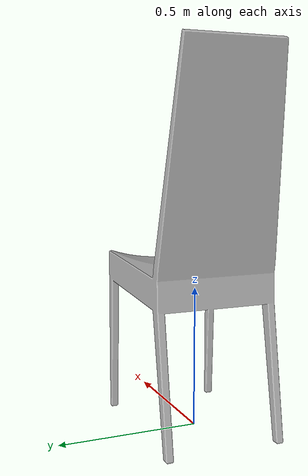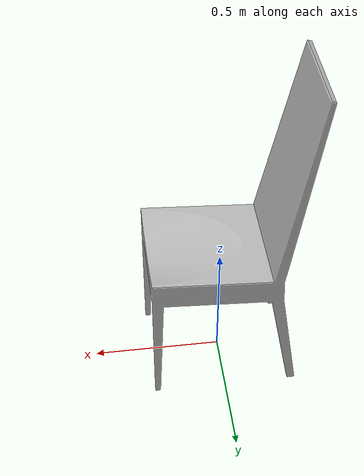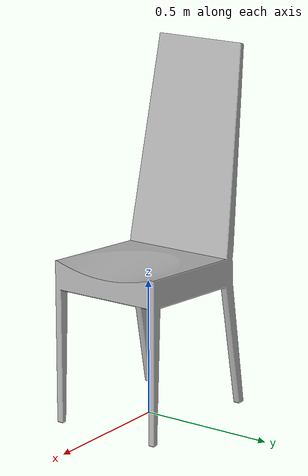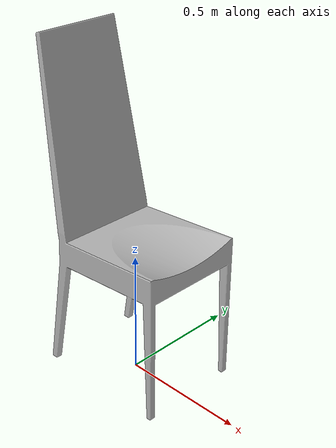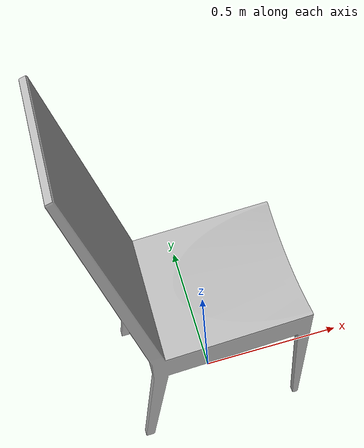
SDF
<?xml version='1.0'?>
<sdf version="1.5">
<model name="foot_chair">
  <pose>0 0 0 0 0 0</pose>
  <static>false</static>
    <link name="link">
      <inertial>
        <mass>10.0</mass>
        <inertia> <!-- inertias are tricky to compute -->
          <!-- http://gazebosim.org/tutorials?tut=inertia&cat=build_robot -->
          <ixx>01.387262</ixx>       <!-- for a box: ixx = 0.083 * mass * (y*y + z*z) -->
          <ixy>0.0</ixy>         <!-- for a box: ixy = 0 -->
          <ixz>0.0</ixz>         <!-- for a box: ixz = 0 -->
          <iyy>01.282599</iyy>       <!-- for a box: iyy = 0.083 * mass * (x*x + z*z) -->
          <iyz>0.0</iyz>         <!-- for a box: iyz = 0 -->
          <izz>00.397487</izz>       <!-- for a box: izz = 0.083 * mass * (x*x + y*y) -->
        </inertia>
      </inertial>
      <collision name="collision">
        <geometry>
          <mesh> <uri>/home/ahan/thormang_ws/src/PIONEER-ROBOT/pioneer_dragging/config/models/foot_chair/meshes/model.stl</uri> </mesh>
          <scale>1 1 1</scale>
        </geometry>
      </collision>
      <visual name="visual">
        <geometry>
          <mesh> <uri>/home/ahan/thormang_ws/src/PIONEER-ROBOT/pioneer_dragging/config/models/foot_chair/meshes/model.stl</uri> </mesh>
          <scale>1 1 1</scale>
        </geometry>
      </visual>
    </link>
  </model>
</sdf>
